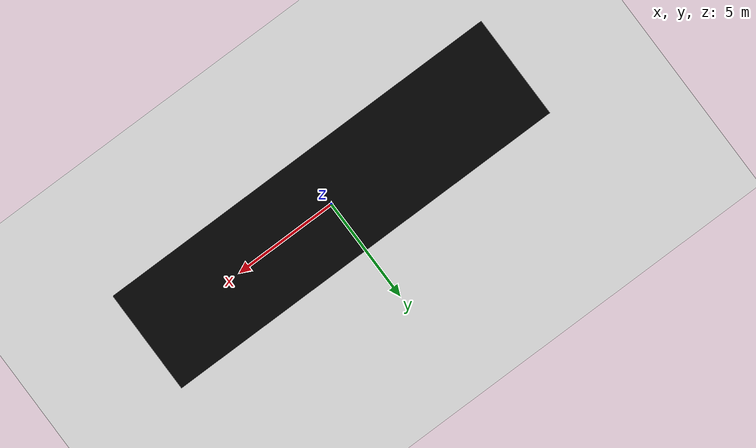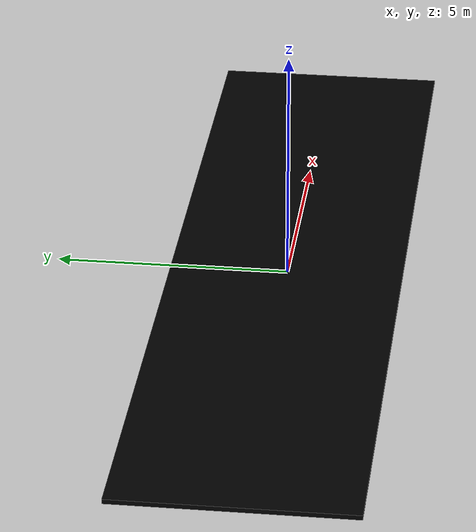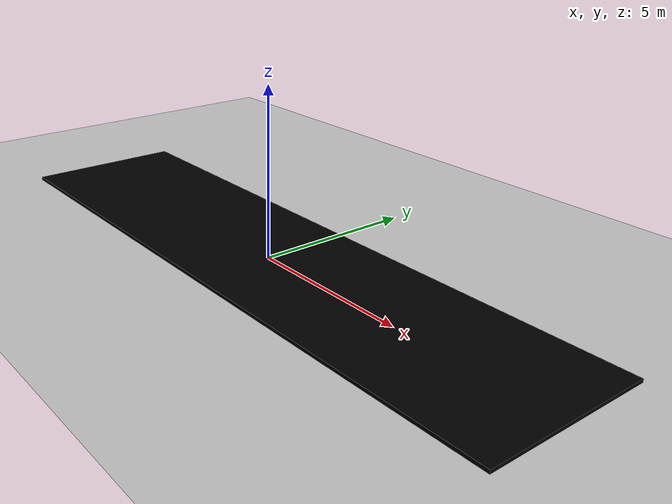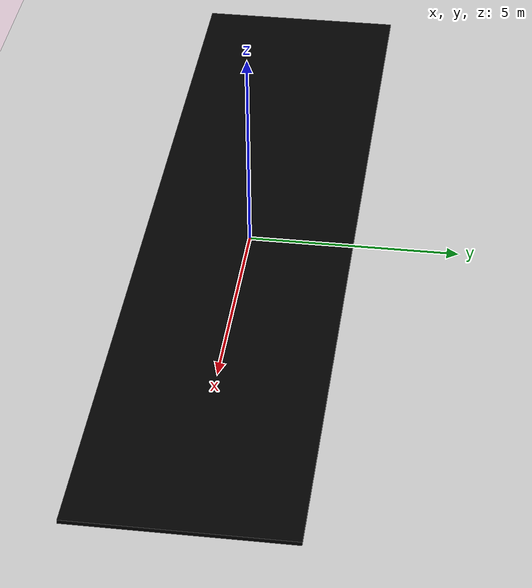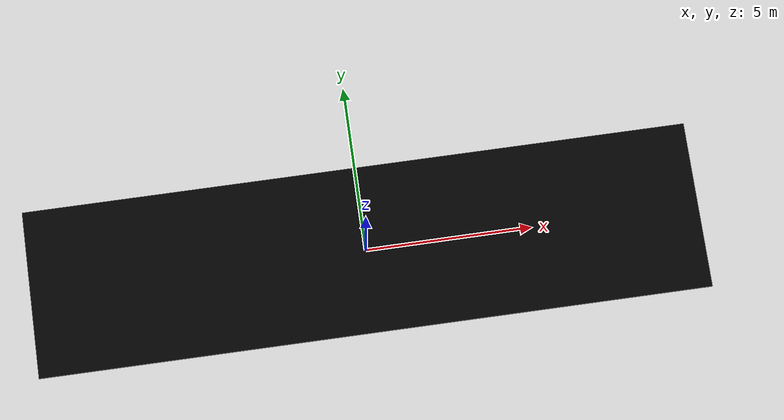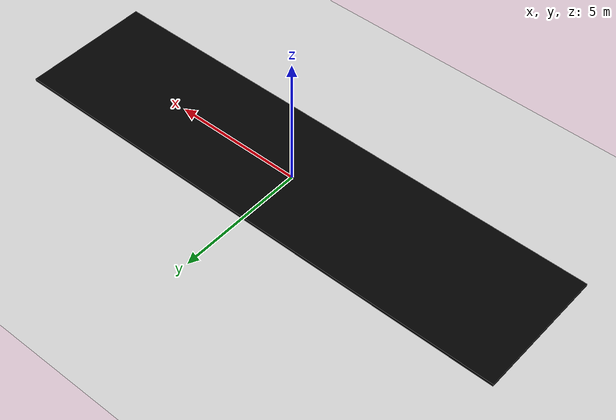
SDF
<?xml version="1.0"?>
<sdf version="1.7">
  <world name="base_world">
<!-- Gravedad -->

 <!-- Suelo manual -->
    <model name="ground_plane">
      <static>true</static>
      <link name="link">
        <collision name="collision">
          <geometry>
            <plane>
              <normal>0 0 1</normal>
              <size>100 100</size>
            </plane>
          </geometry>
        </collision>
        <visual name="visual">
          <geometry>
            <plane>
              <normal>0 0 1</normal>
              <size>100 100</size>
            </plane>
          </geometry>
          <material>
            <ambient>0.8 0.8 0.8 1</ambient>
            <diffuse>0.8 0.8 0.8 1</diffuse>
            <specular>0.8 0.8 0.8 1</specular>
          </material>
        </visual>
      </link>
    </model>

<model name="mesa_flotacion">
  <static>true</static>
  <pose>0 0 0.05 0 0 0</pose>

  <!-- Superficie de la mesa-->
  <link name="superficie">
    <pose>0 0 0.05 0 0 0</pose>
    <collision name="col_superficie">
      <geometry>
        <box>
          <size>20 5 0.1</size>
        </box>
      </geometry>
      <surface>
        <friction>
          <ode>
            <mu>0.0</mu>
            <mu2>0.0</mu2>
          </ode>
        </friction>
      </surface>
    </collision>
    <visual name="vis_superficie">
      <geometry>
        <box>
          <size>20 5 0.1</size>
        </box>
      </geometry>
      <material>
        <ambient>0 0 0 1</ambient>
        <diffuse>0 0 0 1</diffuse>
      </material>
    </visual>
  </link>

</model>

    <light type="directional" name="sun">
      <cast_shadows>true</cast_shadows>
      <direction>-0.5 -0.5 -1</direction>
      <diffuse>1 1 1 1</diffuse>
      <specular>1 1 1 1</specular>
    </light>

  </world>
</sdf>
